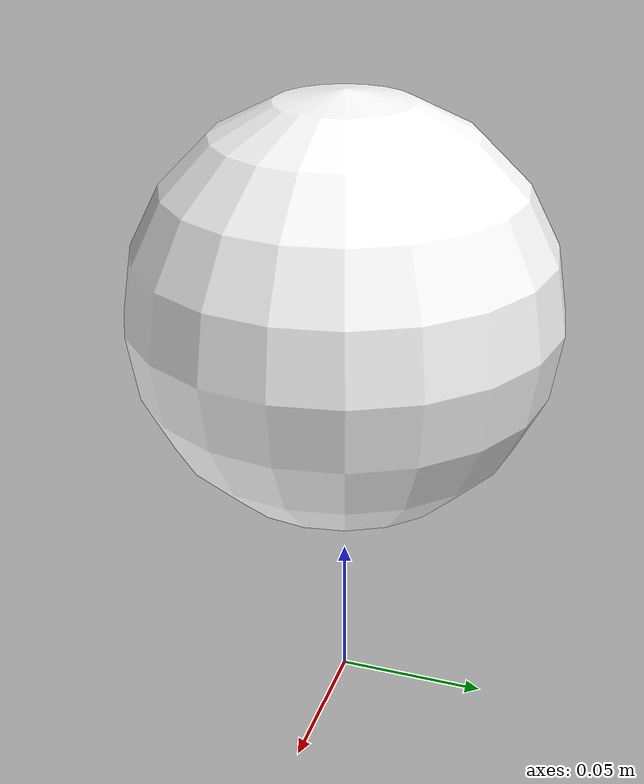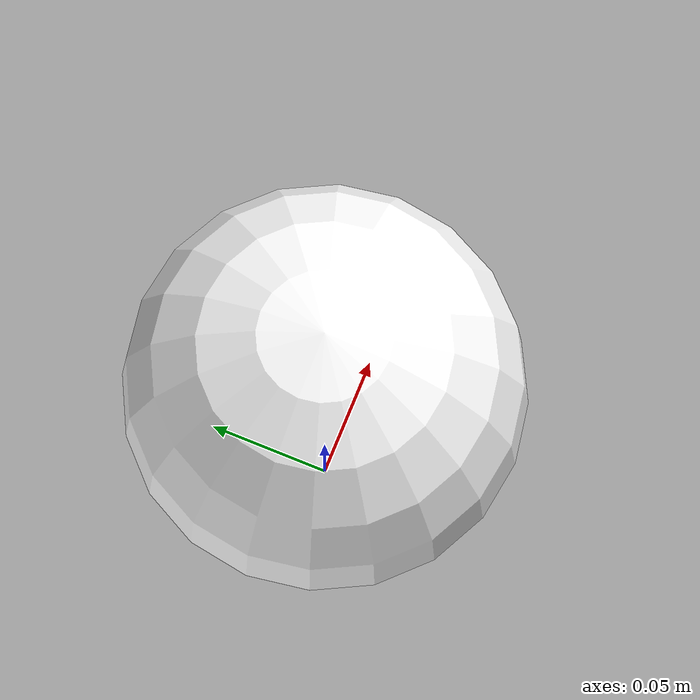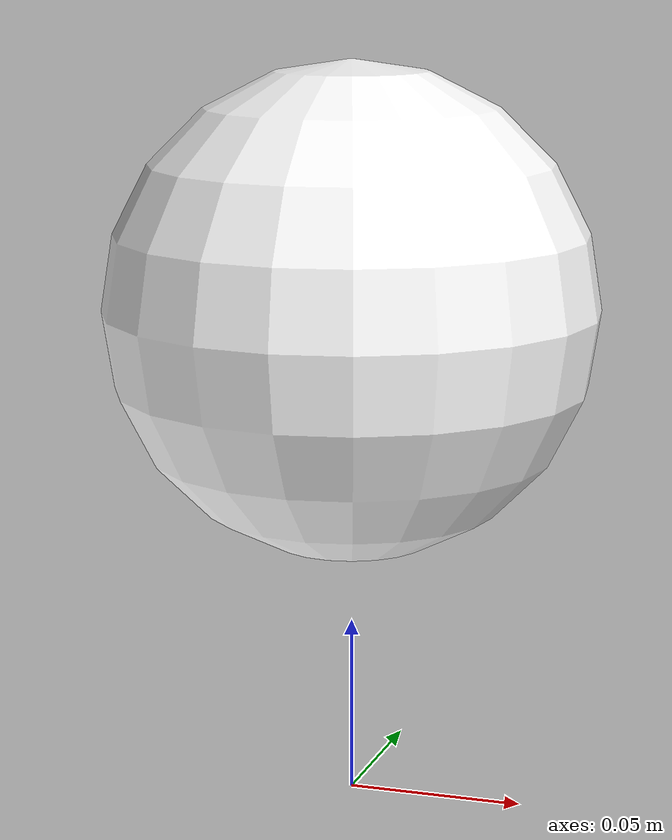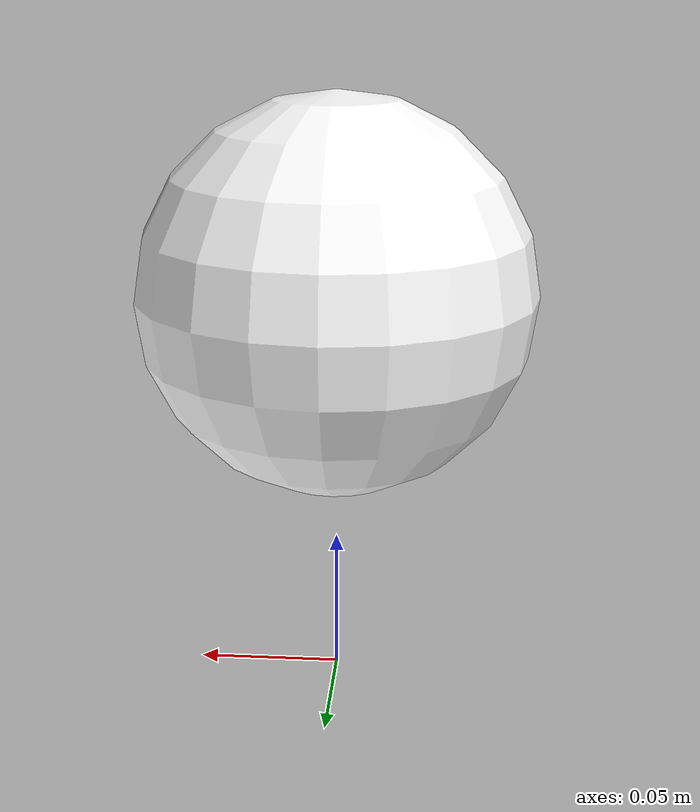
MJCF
<mujoco model="ball">
<compiler meshdir="../meshes/" angle="radian" assetdir="assets"/>
     <asset>
    <texture name="ball" type="cube" fileup="up.png" filedown="down.png" filefront="front.png" fileback="back.png" fileleft="left.png" fileright="right.png"/>
    <material name="ball" texture="ball"/>
  </asset>

  <worldbody>
    <body name="ball"  pos="0 0 0.14">
      <freejoint name="ball_root" />
      <site name="ball" />
      <inertial pos="0 0 0" mass="0.3" diaginertia="0.00128 0.00128 0.00128"/>
        <geom name="ball" pos="0 0 0" size="0.07" mass="0.3" friction="0.4 0.01 0.01" rgba="1 1 1 1" condim="6" priority="1" solref="-5000 -20" type="sphere" material="ball"/>

    </body>
  </worldbody>
</mujoco>
